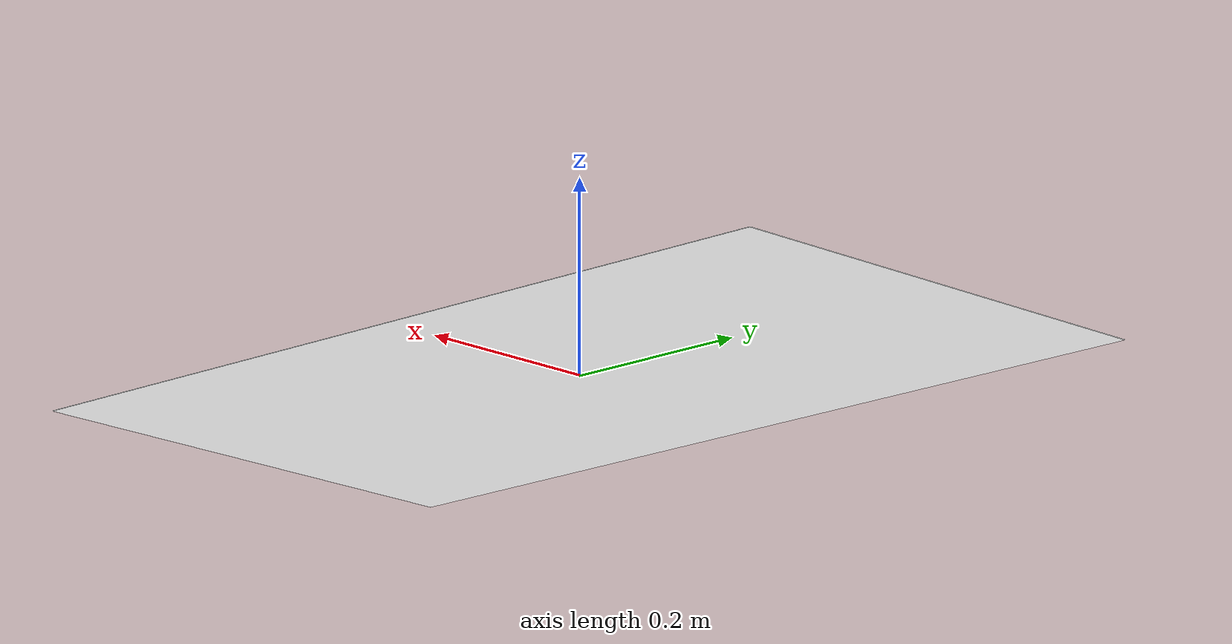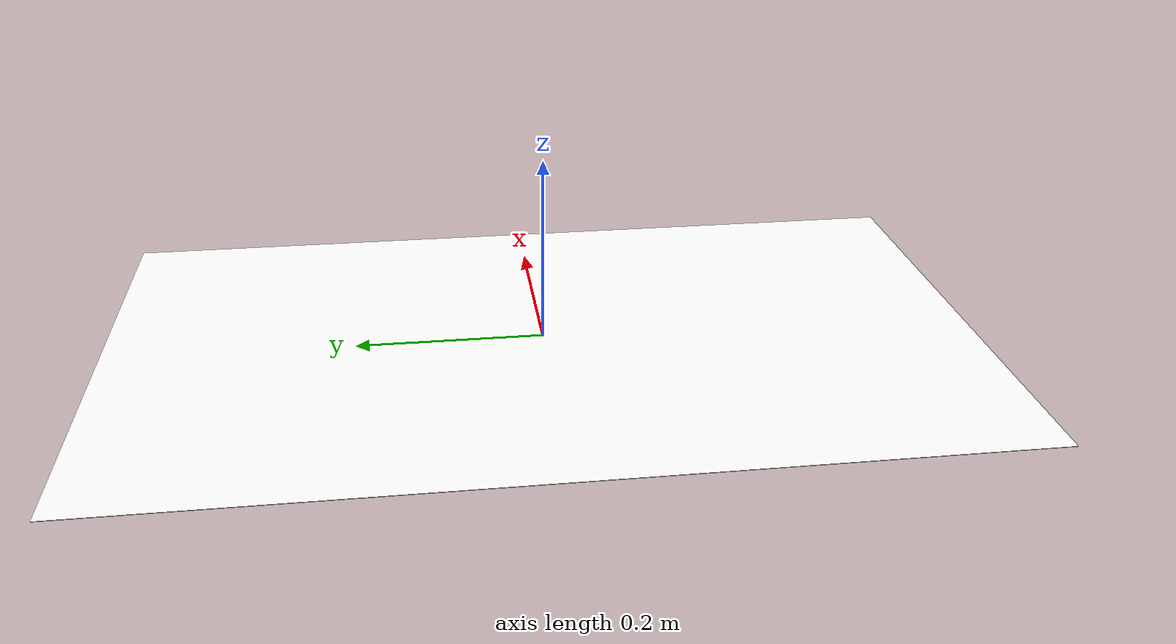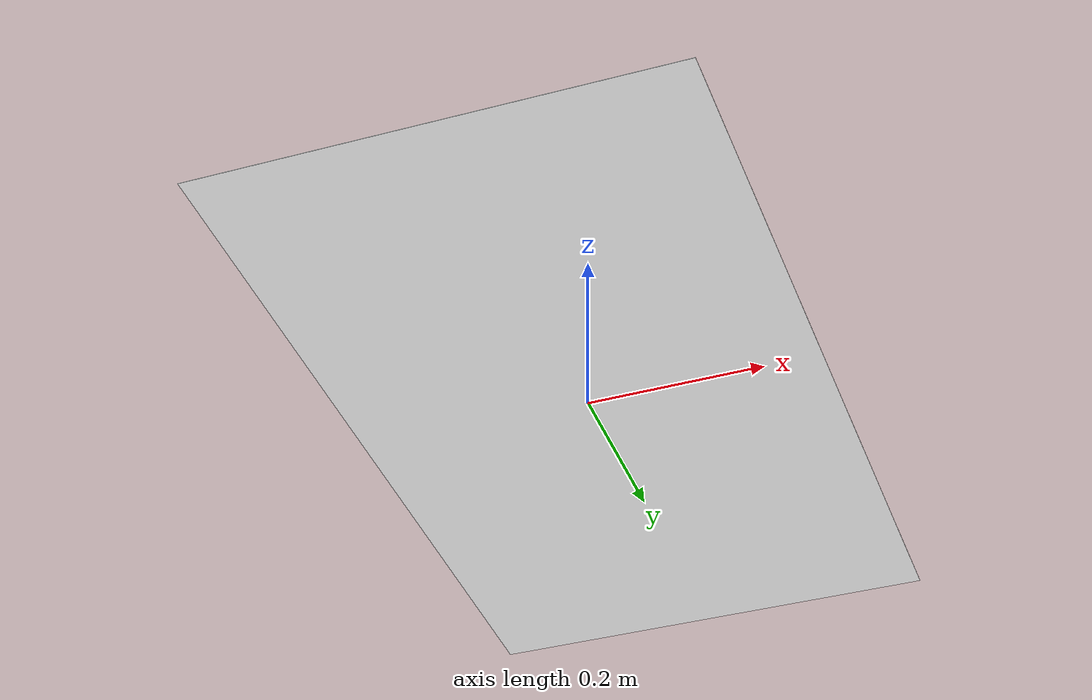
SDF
<?xml version='1.0'?>
<sdf version='1.6'>
  <model name='race_track5'>
    <static>true</static>
    <link name='link'>
      <visual name='visual'>
        <geometry>
          <box>
            <size>0.529 0.932 0.000553</size>
          </box>
        </geometry>
        <material>
          <script>
            <name>RaceTrack5/track5</name>
	    <uri>model://racetrack5/materials/scripts</uri>
            <uri>model://racetrack5/materials/textures</uri>
          </script>
          <ambient>1 1 1 1</ambient>
          <diffuse>1 1 1 1</diffuse>
          <specular>0.01 0.01 0.01 1</specular>
          <emissive>1 1 1 1</emissive>
        </material>
        <transparency>0</transparency>
      </visual>
      <collision name='collision'>
        <geometry>
          <box>
            <size>0.529 0.932 0.000553</size>
          </box>
        </geometry>
	<surface>
          <friction>
            <ode>
              <mu>100</mu>
              <mu2>50</mu2>
            </ode>
          </friction>
        </surface>
      </collision>
    </link>
  </model>
</sdf>
